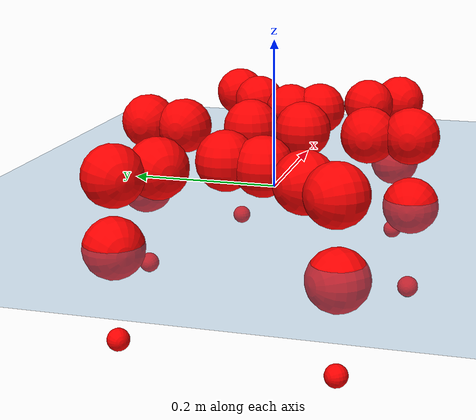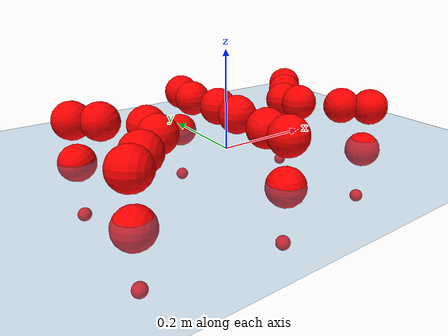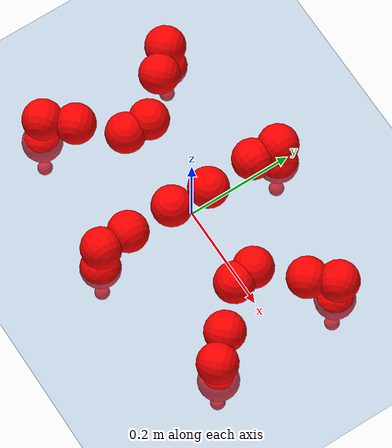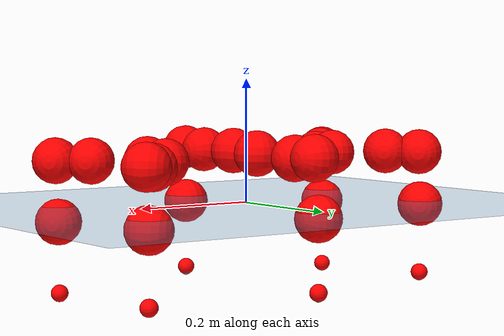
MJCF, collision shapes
<mujoco model="Golem">
  <compiler angle="radian" assetdir="assets" balanceinertia="true" inertiafromgeom="false"/>

  <option timestep="0.005" density="1.2" viscosity="2e-05"/>

  <size nkey="1"/>

  <visual>
    <quality shadowsize="8192"/>
    <map shadowclip="0.5"/>
  </visual>

  <default>
    <default class="/">
      <joint armature="0.01" damping="0.01" frictionloss="0.01"/>
      <geom contype="0" conaffinity="0" group="1" solref="-1000 -80"/>
      <site size="0.01 0.005 0.005" group="5"/>
      <general forcelimited="true" biastype="affine" gainprm="25" biasprm="0 -25 -0.5"/>
      <default class="visual">
        <geom type="mesh" group="2"/>
      </default>
      <default class="collision">
        <geom group="3"/>
      </default>
      <default class="foot">
        <geom size="0.01 0 0" condim="6" group="4" priority="1" solimp="0.015 1 0.01"/>
      </default>
      <default class="reward_collision_sphere">
        <geom group="5" rgba="1 0 0 1"/>
      </default>
    </default>
  </default>

  <asset>
    <texture type="skybox" colorspace="auto" name="//unnamed_texture_0" builtin="gradient" rgb1="0.95 0.95 0.95" rgb2="0.95 0.95 0.95" width="100" height="600"/>
    <texture type="2d" colorspace="auto" name="texplane" builtin="checker" rgb1="0.345 0.575 0.748" rgb2="0.345 0.575 0.748" markrgb="1 1 1" width="512" height="512"/>
    <material name="MatPlane" class="/" texture="texplane" texuniform="true" texrepeat="2 2" specular="0.9"/>
    <mesh name="body" class="/" file="body.stl" scale="0.001 0.001 0.001"/>
    <mesh name="coxa" class="/" file="coxa.stl" scale="0.001 0.001 0.001"/>
    <mesh name="femur" class="/" file="femur.stl" scale="0.001 0.001 0.001"/>
    <mesh name="tibia" class="/" file="tibia.stl" scale="0.001 0.001 0.001"/>
    <mesh name="tarsus" class="/" file="tarsus.stl" scale="0.001 0.001 0.001"/>
  </asset>

  <worldbody>
    <geom name="floor" class="/" size="100 100 0.125" type="plane" group="0" material="MatPlane"/>
    <light name="toplight_shadow" class="/" pos="0 0 5" dir="0.0990148 0.0990148 -0.990148" type="directional" ambient="0.04 0.04 0.04" diffuse="0.55 0.55 0.55" specular="0.12 0.12 0.12"/>
    <light name="toplight_fill" class="/" pos="0 0 5" dir="0.0990148 0.0990148 -0.990148" type="directional" castshadow="false" ambient="0.04 0.04 0.04" diffuse="0.3 0.3 0.3" specular="0.08 0.08 0.08"/>
    <body name="trunk" pos="0.00118917 -0.00426928 -0.000655209" quat="1 -0.000275942 -0.000110835 0.000132158">
      <inertial pos="-0.000373835 -0.000601139 0.00523152" quat="0.999949 -0.004993 0.00644368 0.00600213" mass="2.76275" diaginertia="0.0131685 0.000359861 0.0268615"/>
      <joint name="//unnamed_joint_0" type="free"/>
      <geom name="//unnamed_geom_1" class="/" pos="0 0 0.0775668" quat="1 0 0 0" type="mesh" rgba="0.9 0.9 0.9 1" mesh="body"/>
      <site name="imu" class="/" pos="0.126681 0.00589908 0.109824" size="0.00930906"/>
      <camera name="track" class="/" pos="0 -1.03452 0" quat="0.707107 0.707107 0 0" mode="trackcom"/>
      <camera name="ego_camera" class="/" pos="0.138252 0 0.121198" quat="-0.5 -0.5 0.5 0.5"/>
      <body name="coxa_RR" pos="-0.189581 -0.0486159 0.0741428" quat="0.383417 -0.0015899 0.000570077 -0.923574">
        <inertial pos="0.000478126 0.00556476 -0.00497797" quat="1 0.000122847 2.96512e-05 -5.97404e-05" mass="0.154651" diaginertia="0.0134991 0.000362263 0.0260456"/>
        <joint name="coxa_joint_RR" class="/" pos="0 0 0" axis="-0.00254779 0.0075505 -0.999968" range="-3.18517 3.12701" armature="0.00899567" damping="0.0249346" frictionloss="0.00817707"/>
        <geom name="//unnamed_geom_2" class="/" type="mesh" rgba="0.2 0.2 0.2 1" mesh="coxa"/>
        <geom name="//unnamed_geom_3" class="reward_collision_sphere" size="0.0372362" pos="-0.0319043 0 0"/>
        <body name="femur_RR" pos="0.0575922 0.00201886 0.00165778" quat="0.50008 -0.500467 0.501089 0.49836">
          <inertial pos="0.00230965 7.02057e-05 -0.00191283" quat="0.999998 -0.00112166 0.00155559 -0.000432263" mass="0.157949" diaginertia="0.0132889 0.000358297 0.0253995"/>
          <joint name="femur_joint_RR" class="/" pos="0 0 0" axis="-0.00742628 -0.00521281 -0.999959" range="-3.11362 3.13005" armature="0.0102104" damping="0.0199316" frictionloss="0.00937026"/>
          <geom name="//unnamed_geom_4" class="/" type="mesh" rgba="0.9 0.9 0.9 1" mesh="femur"/>
          <geom name="//unnamed_geom_5" class="reward_collision_sphere" size="0.0372362"/>
          <body name="tibia_RR" pos="0.000770682 -0.0583224 0.00422914" quat="0.000170905 1 -0.000205667 0.000149372">
            <inertial pos="-4.99246e-05 0.00115972 0.00202635" quat="0.999999 -0.00109626 -0.000521642 7.21788e-05" mass="0.166207" diaginertia="0.0134856 0.0003582 0.0241881"/>
            <joint name="tibia_joint_RR" class="/" pos="0 0 0" axis="0.00518426 0.00729658 0.99996" range="-3.14714 3.27227" armature="0.00805792" damping="0.00219492" frictionloss="0.0104462"/>
            <geom name="//unnamed_geom_6" class="/" type="mesh" rgba="0.2 0.2 0.2 1" mesh="tibia"/>
            <geom name="//unnamed_geom_7" class="reward_collision_sphere" size="0.0372362"/>
            <body name="tarsus_RR" pos="0.0960882 0.00407896 -0.000666768" quat="0.999999 -0.000956555 -2.70166e-05 0.000415729">
              <inertial pos="0.061939 -0.00648885 0.00320998" quat="0.499812 0.499392 0.499323 0.50147" mass="0.147341" diaginertia="0.0129271 0.000335549 0.0244453"/>
              <joint name="tarsus_joint_RR" class="/" pos="0 0 0" axis="-0.00738602 -0.00226253 0.99997" range="-3.24554 3.13012" armature="0.00994608" damping="0.0475675" frictionloss="0.00932797"/>
              <geom name="//unnamed_geom_8" class="/" type="mesh" rgba="0.9 0.9 0.9 1" mesh="tarsus"/>
              <geom name="foot_1" class="foot" size="0.00949426" pos="0.11911 0 0" quat="0 -0.707107 0 0.707107"/>
              <geom name="//unnamed_geom_10" class="reward_collision_sphere" size="0.0372362"/>
              <geom name="//unnamed_geom_11" class="reward_collision_sphere" size="0.0139636" pos="0.114324 0 0"/>
              <site name="foot_1" class="foot" pos="0.11911 0 0" quat="0 -0.707107 0 0.707107" size="0.00930906"/>
            </body>
          </body>
        </body>
      </body>
      <body name="coxa_RM" pos="-0.00323361 -0.0675084 0.0828686" quat="0.707331 -0.000321197 0.000221979 -0.706882">
        <inertial pos="-0.00159118 0.00052886 0.00212166" quat="0.999985 0.00291706 0.0046216 -0.000497459" mass="0.168171" diaginertia="0.013923 0.000373849 0.0269515"/>
        <joint name="coxa_joint_RM" class="/" pos="0 0 0" axis="-0.00294284 -0.000486034 -0.999996" stiffness="0.02443" range="-3.18376 3.09795" armature="0.0092554" damping="0.0361333" frictionloss="0.0122084"/>
        <geom name="//unnamed_geom_12" class="/" type="mesh" rgba="0.2 0.2 0.2 1" mesh="coxa"/>
        <geom name="//unnamed_geom_13" class="reward_collision_sphere" size="0.0372362" pos="-0.0319043 0 0"/>
        <body name="femur_RM" pos="0.0569998 -0.00130156 -0.00207129" quat="0.500595 -0.500445 0.499882 0.499076">
          <inertial pos="0.000419371 8.98816e-06 -0.00240502" quat="0.999938 0.0093353 -0.00547603 -0.00250865" mass="0.152862" diaginertia="0.0139427 0.000352571 0.025595"/>
          <joint name="femur_joint_RM" class="/" pos="0 0 0" axis="0.00589737 0.0105659 -0.999927" stiffness="0.00196615" range="-3.09628 3.13834" armature="0.00814891" damping="0.0188864" frictionloss="0.0087195"/>
          <geom name="//unnamed_geom_14" class="/" type="mesh" rgba="0.9 0.9 0.9 1" mesh="femur"/>
          <geom name="//unnamed_geom_15" class="reward_collision_sphere" size="0.0372362"/>
          <body name="tibia_RM" pos="-0.00134948 -0.055588 0.00143261" quat="-0.000437218 1 -5.96093e-05 -7.82295e-05">
            <inertial pos="0.00554134 0.00422633 0.00167872" quat="0.999594 0.00450402 -0.0242059 -0.0143146" mass="0.163349" diaginertia="0.0135351 0.000375288 0.0281904"/>
            <joint name="tibia_joint_RM" class="/" pos="0 0 0" axis="0.00188993 0.00689429 0.999974" range="-3.10835 3.14657" armature="0.00933908" damping="0" frictionloss="0.00907067"/>
            <geom name="//unnamed_geom_16" class="/" type="mesh" rgba="0.2 0.2 0.2 1" mesh="tibia"/>
            <geom name="//unnamed_geom_17" class="reward_collision_sphere" size="0.0372362"/>
            <body name="tarsus_RM" pos="0.0931524 0.00233711 0.00237813" quat="0.999999 -4.8781e-05 0.000770124 -0.000698549">
              <inertial pos="0.0623781 0.00356688 -0.0019807" quat="0.492712 0.500164 0.508196 0.498806" mass="0.159047" diaginertia="0.0135652 0.000353284 0.0259788"/>
              <joint name="tarsus_joint_RM" class="/" pos="0 0 0" axis="0.00812658 0.00465864 0.999956" range="-3.14117 3.11664" armature="0.0115382" damping="0" frictionloss="0.0103855"/>
              <geom name="//unnamed_geom_18" class="/" type="mesh" rgba="0.9 0.9 0.9 1" mesh="tarsus"/>
              <geom name="foot_2" class="foot" size="0.010236" pos="0.11911 0 0" quat="0 -0.707107 0 0.707107"/>
              <geom name="//unnamed_geom_20" class="reward_collision_sphere" size="0.0372362"/>
              <geom name="//unnamed_geom_21" class="reward_collision_sphere" size="0.0139636" pos="0.114324 0 0"/>
              <site name="foot_2" class="foot" pos="0.11911 0 0" quat="0 -0.707107 0 0.707107" size="0.00930906"/>
            </body>
          </body>
        </body>
      </body>
      <body name="coxa_RF" pos="0.194649 -0.0434169 0.0749398" quat="0.923885 3.25273e-05 -1.95207e-06 -0.382669">
        <inertial pos="-0.00340727 -0.000521756 0.000447956" quat="0.999928 0.00194172 0.00955058 0.00698388" mass="0.15946" diaginertia="0.0126121 0.000377676 0.0272016"/>
        <joint name="coxa_joint_RF" class="/" pos="0 0 0" axis="0.00648339 0.00103393 -0.999978" range="-3.1219 3.09069" armature="0.00915886" damping="0.0321048" frictionloss="0.00831678"/>
        <geom name="//unnamed_geom_22" class="/" type="mesh" rgba="0.2 0.2 0.2 1" mesh="coxa"/>
        <geom name="//unnamed_geom_23" class="reward_collision_sphere" size="0.0372362" pos="-0.0319043 0 0"/>
        <body name="femur_RF" pos="0.058452 0.00217661 -0.00288293" quat="0.499538 -0.499211 0.501179 0.50007">
          <inertial pos="-0.00255117 -0.00286538 0.00264232" quat="0.999952 -0.00257633 0.00279334 0.00907444" mass="0.159831" diaginertia="0.0130719 0.000331296 0.0261215"/>
          <joint name="femur_joint_RF" class="/" pos="0 0 0" axis="-0.000168902 0.00148368 -0.999999" stiffness="0.00448235" range="-3.21226 3.1435" armature="0.00852952" damping="0.0181159" frictionloss="0.00994666"/>
          <geom name="//unnamed_geom_24" class="/" type="mesh" rgba="0.9 0.9 0.9 1" mesh="femur"/>
          <geom name="//unnamed_geom_25" class="reward_collision_sphere" size="0.0372362"/>
          <body name="tibia_RF" pos="8.25151e-05 -0.0586995 -0.000389824" quat="6.04554e-06 1 -3.1377e-06 -3.26472e-06">
            <inertial pos="0.00129457 -0.0010627 0.00124638" quat="0.999953 0.00753827 0.00017873 -0.00610212" mass="0.158774" diaginertia="0.0124512 0.000370542 0.0251362"/>
            <joint name="tibia_joint_RF" class="/" pos="0 0 0" axis="-0.00555283 0.0044125 0.999975" range="-3.0937 3.09058" armature="0.0096649" damping="0.00170447" frictionloss="0.0106321"/>
            <geom name="//unnamed_geom_26" class="/" type="mesh" rgba="0.2 0.2 0.2 1" mesh="tibia"/>
            <geom name="//unnamed_geom_27" class="reward_collision_sphere" size="0.0372362"/>
            <body name="tarsus_RF" pos="0.0973521 -0.00440203 -0.00170327" quat="0.999997 -0.000614221 -0.00164299 -0.00177631">
              <inertial pos="0.0684876 0.00532664 -0.00219727" quat="0.480803 0.490839 0.522464 0.504912" mass="0.163258" diaginertia="0.0125507 0.000389577 0.0253497"/>
              <joint name="tarsus_joint_RF" class="/" pos="0 0 0" axis="0.00144727 -0.0133257 0.99991" stiffness="0.0268574" range="-3.24 3.09324" armature="0.00631108" damping="0.00777895" frictionloss="0.00939226"/>
              <geom name="//unnamed_geom_28" class="/" type="mesh" rgba="0.9 0.9 0.9 1" mesh="tarsus"/>
              <geom name="foot_3" class="foot" size="0.00858959" pos="0.11911 0 0" quat="0 -0.707107 0 0.707107"/>
              <geom name="//unnamed_geom_30" class="reward_collision_sphere" size="0.0372362"/>
              <geom name="//unnamed_geom_31" class="reward_collision_sphere" size="0.0139636" pos="0.114324 0 0"/>
              <site name="foot_3" class="foot" pos="0.11911 0 0" quat="0 -0.707107 0 0.707107" size="0.00930906"/>
            </body>
          </body>
        </body>
      </body>
      <body name="coxa_LR" pos="-0.18791 0.0435271 0.0775635" quat="0.38293 8.33417e-05 0.000247624 0.923777">
        <inertial pos="-0.00183667 0.0056431 0.00291255" quat="0.999905 0.00100407 -0.0136993 -0.000684024" mass="0.170132" diaginertia="0.0149795 0.000371572 0.0282657"/>
        <joint name="coxa_joint_LR" class="/" pos="0 0 0" axis="-0.00198416 -0.000644838 -0.999998" stiffness="0.00767582" range="-3.1495 3.03554" armature="0.0113938" damping="0.00621103" frictionloss="0.00817342"/>
        <geom name="//unnamed_geom_32" class="/" type="mesh" rgba="0.2 0.2 0.2 1" mesh="coxa"/>
        <geom name="//unnamed_geom_33" class="reward_collision_sphere" size="0.0372362" pos="-0.0319043 0 0"/>
        <body name="femur_LR" pos="0.057194 0.000759322 0.00293012" quat="0.500148 -0.500466 0.499281 0.500104">
          <inertial pos="0.00184201 -0.000789518 0.00251553" quat="0.999678 -0.021048 0.0121192 0.00732674" mass="0.157573" diaginertia="0.0134754 0.000357522 0.0233067"/>
          <joint name="femur_joint_LR" class="/" pos="0 0 0" axis="2.96004e-05 -0.00122193 0.999999" stiffness="0.0147436" range="-3.26239 3.19411" armature="0.00909017" damping="0.0223577" frictionloss="0.0082264"/>
          <geom name="//unnamed_geom_34" class="/" type="mesh" rgba="0.9 0.9 0.9 1" mesh="femur"/>
          <geom name="//unnamed_geom_35" class="reward_collision_sphere" size="0.0372362"/>
          <body name="tibia_LR" pos="0.000869544 -0.055695 0.00139186" quat="2.53197e-06 1 3.72969e-07 -5.10025e-06">
            <inertial pos="-0.00221461 0.0053368 -0.00164227" quat="0.999995 0.00229932 -0.00027592 -0.00196191" mass="0.162341" diaginertia="0.013515 0.000377 0.026159"/>
            <joint name="tibia_joint_LR" class="/" pos="0 0 0" axis="-6.14527e-05 -0.0035333 -0.999994" range="-3.08326 3.13091" armature="0.00952061" damping="0.0481101" frictionloss="0.00889691"/>
            <geom name="//unnamed_geom_36" class="/" type="mesh" rgba="0.2 0.2 0.2 1" mesh="tibia"/>
            <geom name="//unnamed_geom_37" class="reward_collision_sphere" size="0.0372362"/>
            <body name="tarsus_LR" pos="0.0865883 0.00216926 0.00185915" quat="0.999998 -0.000807816 0.00127691 -0.000970037">
              <inertial pos="0.0590593 -0.0011314 0.000352921" quat="0.503114 0.499244 0.501977 0.495632" mass="0.156305" diaginertia="0.0140003 0.000365168 0.0268635"/>
              <joint name="tarsus_joint_LR" class="/" pos="0 0 0" axis="-0.0112075 -0.00966837 -0.99989" stiffness="0.019441" range="-3.06333 3.14082" armature="0.00930928" damping="0.0261294" frictionloss="0.0112571"/>
              <geom name="//unnamed_geom_38" class="/" type="mesh" rgba="0.9 0.9 0.9 1" mesh="tarsus"/>
              <geom name="foot_4" class="foot" size="0.00946796" pos="0.11911 0 0" quat="0.707107 0 -0.707107 0"/>
              <geom name="//unnamed_geom_40" class="reward_collision_sphere" size="0.0372362"/>
              <geom name="//unnamed_geom_41" class="reward_collision_sphere" size="0.0139636" pos="0.114324 0 0"/>
              <site name="foot_4" class="foot" pos="0.11911 0 0" quat="0.707107 0 -0.707107 0" size="0.00930906"/>
            </body>
          </body>
        </body>
      </body>
      <body name="coxa_LM" pos="0.00148534 0.0687789 0.0816911" quat="0.707069 -9.34517e-05 -2.43945e-05 0.707145">
        <inertial pos="0.00367821 -0.00198315 0.00242654" quat="0.999993 0.00223357 -0.00272517 0.00121139" mass="0.17054" diaginertia="0.0145642 0.000405562 0.0253622"/>
        <joint name="coxa_joint_LM" class="/" pos="0 0 0" axis="0.003255 0.0094764 -0.99995" stiffness="0.000726303" range="-3.14245 3.1432" armature="0.0071015" damping="0.033479" frictionloss="0.00983537"/>
        <geom name="//unnamed_geom_42" class="/" type="mesh" rgba="0.2 0.2 0.2 1" mesh="coxa"/>
        <geom name="//unnamed_geom_43" class="reward_collision_sphere" size="0.0372362" pos="-0.0319043 0 0"/>
        <body name="femur_LM" pos="0.0621051 0.00463865 -0.00285861" quat="0.500734 -0.500482 0.499345 0.499437">
          <inertial pos="-0.00253825 6.0402e-05 -0.00429172" quat="0.999998 -0.00133742 -0.00122405 0.000421749" mass="0.161181" diaginertia="0.0137393 0.000374986 0.0258483"/>
          <joint name="femur_joint_LM" class="/" pos="0 0 0" axis="-0.00151818 -0.00786534 0.999968" range="-3.09022 3.18875" armature="0.00964498" damping="0.0174104" frictionloss="0.00865341"/>
          <geom name="//unnamed_geom_44" class="/" type="mesh" rgba="0.9 0.9 0.9 1" mesh="femur"/>
          <geom name="//unnamed_geom_45" class="reward_collision_sphere" size="0.0372362"/>
          <body name="tibia_LM" pos="-0.00289289 -0.052399 -0.00253864" quat="0.000207666 0.999999 -0.000684275 0.000706105">
            <inertial pos="0.00070623 0.00499412 -0.00613942" quat="0.999505 0.0303242 0.00641639 0.00538761" mass="0.168424" diaginertia="0.0133033 0.000382097 0.0269236"/>
            <joint name="tibia_joint_LM" class="/" pos="0 0 0" axis="0.00603027 0.0101109 -0.999931" stiffness="0.0272855" range="-3.15208 3.22343" armature="0.0100151" damping="0.0179212" frictionloss="0.00963589"/>
            <geom name="//unnamed_geom_46" class="/" type="mesh" rgba="0.2 0.2 0.2 1" mesh="tibia"/>
            <geom name="//unnamed_geom_47" class="reward_collision_sphere" size="0.0372362"/>
            <body name="tarsus_LM" pos="0.0927431 0.00504685 -0.00412189" quat="1 0.00063591 -0.000299651 0.000172534">
              <inertial pos="0.0630185 -0.000826909 0.00335723" quat="0.483196 0.502626 0.493843 0.519623" mass="0.153356" diaginertia="0.013032 0.000379934 0.0264183"/>
              <joint name="tarsus_joint_LM" class="/" pos="0 0 0" axis="0.0175069 0.00556053 -0.999831" stiffness="0.0282026" range="-3.16955 3.21855" armature="0.0088839" damping="0.0180523" frictionloss="0.00912399"/>
              <geom name="//unnamed_geom_48" class="/" type="mesh" rgba="0.9 0.9 0.9 1" mesh="tarsus"/>
              <geom name="foot_5" class="foot" size="0.00967092" pos="0.11911 0 0" quat="0.707107 0 -0.707107 0"/>
              <geom name="//unnamed_geom_50" class="reward_collision_sphere" size="0.0372362"/>
              <geom name="//unnamed_geom_51" class="reward_collision_sphere" size="0.0139636" pos="0.114324 0 0"/>
              <site name="foot_5" class="foot" pos="0.11911 0 0" quat="0.707107 0 -0.707107 0" size="0.00930906"/>
            </body>
          </body>
        </body>
      </body>
      <body name="coxa_LF" pos="0.188475 0.0442806 0.0732496" quat="0.924438 -0.0015247 -0.000828673 0.381328">
        <inertial pos="0.0023046 -0.00225301 0.000849821" quat="0.999512 0.0199203 -0.0127933 -0.0203943" mass="0.155339" diaginertia="0.0139309 0.000359011 0.0289131"/>
        <joint name="coxa_joint_LF" class="/" pos="0 0 0" axis="0.00542977 0.0110971 -0.999924" stiffness="0.0340493" range="-3.14027 3.14811" armature="0.0102352" damping="0.0153643" frictionloss="0.0104441"/>
        <geom name="//unnamed_geom_52" class="/" type="mesh" rgba="0.2 0.2 0.2 1" mesh="coxa"/>
        <geom name="//unnamed_geom_53" class="reward_collision_sphere" size="0.0372362" pos="-0.0319043 0 0"/>
        <body name="femur_LF" pos="0.0622113 0.00222444 -0.00133447" quat="0.500043 -0.499941 0.499965 0.50005">
          <inertial pos="-0.00383855 -0.00208212 -0.00515228" quat="0.999971 0.00755686 -0.00120561 0.000336594" mass="0.164156" diaginertia="0.0140702 0.000371232 0.0280171"/>
          <joint name="femur_joint_LF" class="/" pos="0 0 0" axis="-0.00263789 -0.00364191 0.99999" range="-3.12568 3.0103" armature="0.00845597" damping="0.0280761" frictionloss="0.00998858"/>
          <geom name="//unnamed_geom_54" class="/" type="mesh" rgba="0.9 0.9 0.9 1" mesh="femur"/>
          <geom name="//unnamed_geom_55" class="reward_collision_sphere" size="0.0372362"/>
          <body name="tibia_LF" pos="-0.00399337 -0.0544902 0.00350829" quat="6.07068e-05 1 0.000366027 -0.000567632">
            <inertial pos="-0.0016013 0.0026657 -0.000473608" quat="0.999998 -0.00204375 -0.000673657 6.35078e-05" mass="0.161414" diaginertia="0.0134426 0.000377062 0.0260375"/>
            <joint name="tibia_joint_LF" class="/" pos="0 0 0" axis="0.0113636 0.0089683 -0.999895" range="-3.16357 3.10715" armature="0.011497" damping="0" frictionloss="0.0101588"/>
            <geom name="//unnamed_geom_56" class="/" type="mesh" rgba="0.2 0.2 0.2 1" mesh="tibia"/>
            <geom name="//unnamed_geom_57" class="reward_collision_sphere" size="0.0372362"/>
            <body name="tarsus_LF" pos="0.0926262 -0.00339457 -0.0031555" quat="1 0.000384114 0.000407138 0.000409431">
              <inertial pos="0.066736 0.00202036 -0.0012467" quat="0.502356 0.496973 0.499781 0.500874" mass="0.162183" diaginertia="0.0131607 0.00036095 0.0255154"/>
              <joint name="tarsus_joint_LF" class="/" pos="0 0 0" axis="-0.000815172 -0.00403544 -0.999992" stiffness="0.0294342" range="-3.04787 3.03859" armature="0.00939691" damping="0.0159815" frictionloss="0.00853162"/>
              <geom name="//unnamed_geom_58" class="/" type="mesh" rgba="0.9 0.9 0.9 1" mesh="tarsus"/>
              <geom name="foot_6" class="foot" size="0.00813783" pos="0.11911 0 0" quat="0.707107 0 -0.707107 0"/>
              <geom name="//unnamed_geom_60" class="reward_collision_sphere" size="0.0372362"/>
              <geom name="//unnamed_geom_61" class="reward_collision_sphere" size="0.0139636" pos="0.114324 0 0"/>
              <site name="foot_6" class="foot" pos="0.11911 0 0" quat="0.707107 0 -0.707107 0" size="0.00930906"/>
            </body>
          </body>
        </body>
      </body>
    </body>
  </worldbody>

  <contact>
    <pair class="/" geom1="floor" geom2="foot_1" name="//unnamed_contact_0"/>
    <pair class="/" geom1="floor" geom2="foot_2" name="//unnamed_contact_1"/>
    <pair class="/" geom1="floor" geom2="foot_3" name="//unnamed_contact_2"/>
    <pair class="/" geom1="floor" geom2="foot_4" name="//unnamed_contact_3"/>
    <pair class="/" geom1="floor" geom2="foot_5" name="//unnamed_contact_4"/>
    <pair class="/" geom1="floor" geom2="foot_6" name="//unnamed_contact_5"/>
  </contact>

  <actuator>
    <general name="coxa_joint_RR" class="/" joint="coxa_joint_RR" forcerange="-7.03647 7.03647" gainprm="21.3008" biasprm="0 -21.3008 -0.4364"/>
    <general name="femur_joint_RR" class="/" joint="femur_joint_RR" forcerange="-6.75505 6.75505" gainprm="21.3008" biasprm="0 -21.3008 -0.4364"/>
    <general name="tibia_joint_RR" class="/" joint="tibia_joint_RR" forcerange="-8.18089 8.18089" gainprm="21.3008" biasprm="0 -21.3008 -0.4364"/>
    <general name="tarsus_joint_RR" class="/" joint="tarsus_joint_RR" forcerange="-7.07475 7.07475" gainprm="21.3008" biasprm="0 -21.3008 -0.4364"/>
    <general name="coxa_joint_RM" class="/" joint="coxa_joint_RM" forcerange="-6.82142 6.82142" gainprm="21.3008" biasprm="0 -21.3008 -0.4364"/>
    <general name="femur_joint_RM" class="/" joint="femur_joint_RM" forcerange="-7.17056 7.17056" gainprm="21.3008" biasprm="0 -21.3008 -0.4364"/>
    <general name="tibia_joint_RM" class="/" joint="tibia_joint_RM" forcerange="-8.39542 8.39542" gainprm="21.3008" biasprm="0 -21.3008 -0.4364"/>
    <general name="tarsus_joint_RM" class="/" joint="tarsus_joint_RM" forcerange="-6.30993 6.30993" gainprm="21.3008" biasprm="0 -21.3008 -0.4364"/>
    <general name="coxa_joint_RF" class="/" joint="coxa_joint_RF" forcerange="-6.38762 6.38762" gainprm="21.3008" biasprm="0 -21.3008 -0.4364"/>
    <general name="femur_joint_RF" class="/" joint="femur_joint_RF" forcerange="-5.19344 5.19344" gainprm="21.3008" biasprm="0 -21.3008 -0.4364"/>
    <general name="tibia_joint_RF" class="/" joint="tibia_joint_RF" forcerange="-6.84088 6.84088" gainprm="21.3008" biasprm="0 -21.3008 -0.4364"/>
    <general name="tarsus_joint_RF" class="/" joint="tarsus_joint_RF" forcerange="-5.2163 5.2163" gainprm="21.3008" biasprm="0 -21.3008 -0.4364"/>
    <general name="coxa_joint_LR" class="/" joint="coxa_joint_LR" forcerange="-7.6289 7.6289" gainprm="21.3008" biasprm="0 -21.3008 -0.4364"/>
    <general name="femur_joint_LR" class="/" joint="femur_joint_LR" forcerange="-7.13302 7.13302" gainprm="21.3008" biasprm="0 -21.3008 -0.4364"/>
    <general name="tibia_joint_LR" class="/" joint="tibia_joint_LR" forcerange="-6.64874 6.64874" gainprm="21.3008" biasprm="0 -21.3008 -0.4364"/>
    <general name="tarsus_joint_LR" class="/" joint="tarsus_joint_LR" forcerange="-6.86422 6.86422" gainprm="21.3008" biasprm="0 -21.3008 -0.4364"/>
    <general name="coxa_joint_LM" class="/" joint="coxa_joint_LM" forcerange="-6.90204 6.90204" gainprm="21.3008" biasprm="0 -21.3008 -0.4364"/>
    <general name="femur_joint_LM" class="/" joint="femur_joint_LM" forcerange="-6.92158 6.92158" gainprm="21.3008" biasprm="0 -21.3008 -0.4364"/>
    <general name="tibia_joint_LM" class="/" joint="tibia_joint_LM" forcerange="-8.02658 8.02658" gainprm="21.3008" biasprm="0 -21.3008 -0.4364"/>
    <general name="tarsus_joint_LM" class="/" joint="tarsus_joint_LM" forcerange="-7.24032 7.24032" gainprm="21.3008" biasprm="0 -21.3008 -0.4364"/>
    <general name="coxa_joint_LF" class="/" joint="coxa_joint_LF" forcerange="-7.18418 7.18418" gainprm="21.3008" biasprm="0 -21.3008 -0.4364"/>
    <general name="femur_joint_LF" class="/" joint="femur_joint_LF" forcerange="-7.71188 7.71188" gainprm="21.3008" biasprm="0 -21.3008 -0.4364"/>
    <general name="tibia_joint_LF" class="/" joint="tibia_joint_LF" forcerange="-6.92453 6.92453" gainprm="21.3008" biasprm="0 -21.3008 -0.4364"/>
    <general name="tarsus_joint_LF" class="/" joint="tarsus_joint_LF" forcerange="-6.72202 6.72202" gainprm="21.3008" biasprm="0 -21.3008 -0.4364"/>
  </actuator>

  <sensor>
    <gyro site="imu" name="imu_angular_velocity"/>
    <velocimeter site="imu" name="imu_linear_velocity"/>
    <framelinvel objtype="site" objname="foot_1" name="foot_1_global_linear_velocity"/>
    <framelinvel objtype="site" objname="foot_2" name="foot_2_global_linear_velocity"/>
    <framelinvel objtype="site" objname="foot_3" name="foot_3_global_linear_velocity"/>
    <framelinvel objtype="site" objname="foot_4" name="foot_4_global_linear_velocity"/>
    <framelinvel objtype="site" objname="foot_5" name="foot_5_global_linear_velocity"/>
    <framelinvel objtype="site" objname="foot_6" name="foot_6_global_linear_velocity"/>
  </sensor>

  <keyframe>
    <key name="home" qpos="0 0 0.1457 1 0 0 0 0 0 0 0 0 0 0 0 0 0 0 0 0 0 0 0 0 0 0 0 0 0 0 0"/>
  </keyframe>
</mujoco>
